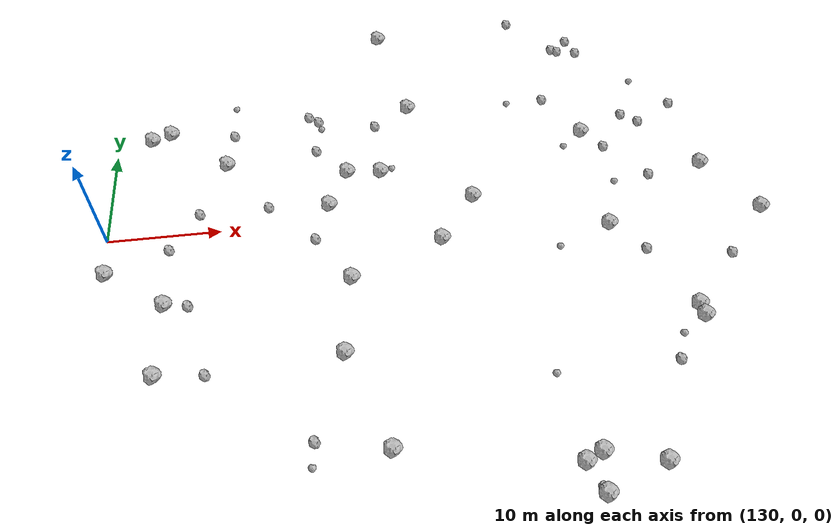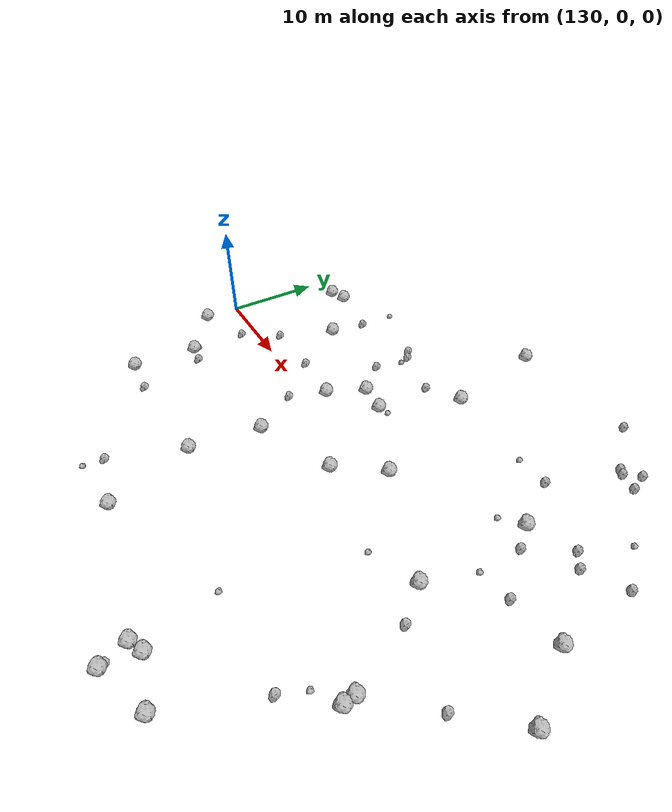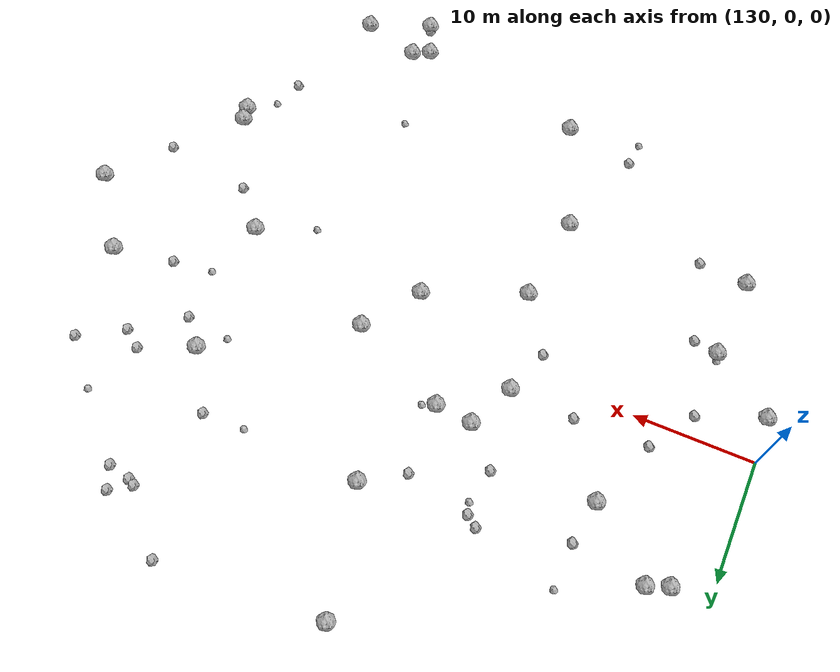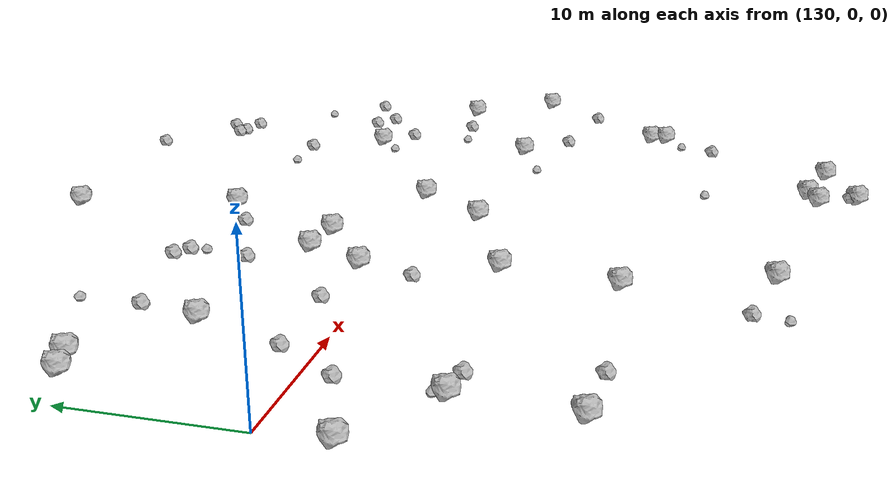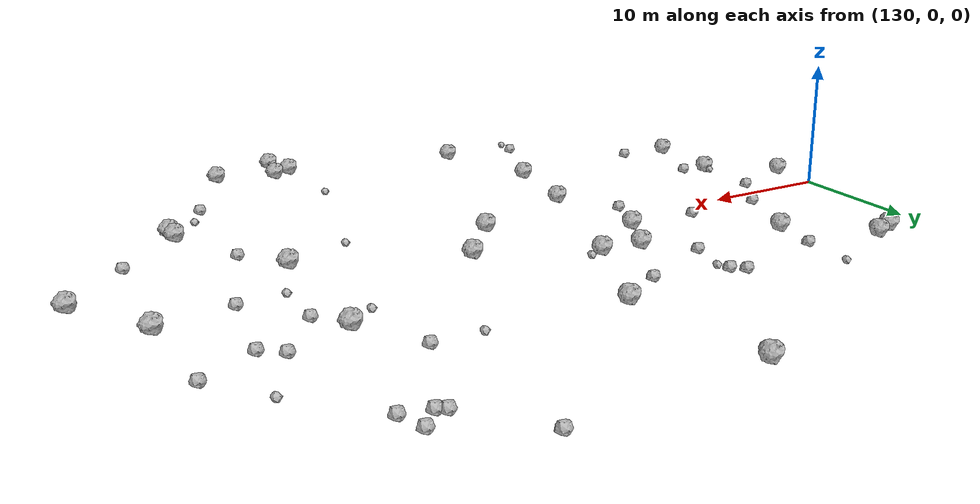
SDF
<sdf version="1.6">
 <world name="default">
  <include><uri>model://sun</uri></include>
  <model name="rock1_4_1">
   <include><uri>model://rock1</uri><pose>154.71235527702987 5.257785383379215 0.5 0 0 0</pose></include>
  </model>
  <model name="rock1_4_2">
   <include><uri>model://rock1</uri><pose>135.4824991166039 -7.487201991059575 0.5 0 0 0</pose></include>
  </model>
  <model name="rock1_4_3">
   <include><uri>model://rock1</uri><pose>159.53347550423555 -3.1610210936557195 0.5 0 0 0</pose></include>
  </model>
  <model name="rock1_4_4">
   <include><uri>model://rock1</uri><pose>180.19764486960696 -12.411742207772868 0.5 0 0 0</pose></include>
  </model>
  <model name="rock1_4_5">
   <include><uri>model://rock1</uri><pose>162.89547836956783 1.342999088866577 0.5 0 0 0</pose></include>
  </model>
  <model name="rock1_4_6">
   <include><uri>model://rock1</uri><pose>151.3254161176689 -6.478339342189379 0.5 0 0 0</pose></include>
  </model>
  <model name="rock1_4_7">
   <include><uri>model://rock1</uri><pose>174.61411431394788 -3.1954084723425993 0.5 0 0 0</pose></include>
  </model>
  <model name="rock1_4_8">
   <include><uri>model://rock1</uri><pose>168.79613424233827 -27.625208925473565 0.5 0 0 0</pose></include>
  </model>
  <model name="rock1_4_9">
   <include><uri>model://rock1</uri><pose>173.88486183359794 -25.680245085483524 0.5 0 0 0</pose></include>
  </model>
  <model name="rock1_4_10">
   <include><uri>model://rock1</uri><pose>153.4849264330453 -22.45382031934568 0.5 0 0 0</pose></include>
  </model>
  <model name="rock1_4_11">
   <include><uri>model://rock1</uri><pose>151.5972548344546 5.569223457575546 0.5 0 0 0</pose></include>
  </model>
  <model name="rock1_4_12">
   <include><uri>model://rock1</uri><pose>150.36980655857374 -13.750875914131544 0.5 0 0 0</pose></include>
  </model>
  <model name="rock1_4_13">
   <include><uri>model://rock1</uri><pose>188.72876641769426 -2.8182301819883584 0.5 0 0 0</pose></include>
  </model>
  <model name="rock1_4_14">
   <include><uri>model://rock1</uri><pose>134.98997783550334 12.26487358177367 0.5 0 0 0</pose></include>
  </model>
  <model name="rock1_4_15">
   <include><uri>model://rock1</uri><pose>135.07660463427436 -14.214586296145047 0.5 0 0 0</pose></include>
  </model>
  <model name="rock1_4_16">
   <include><uri>model://rock1</uri><pose>133.22397477715904 11.61149558739222 0.5 0 0 0</pose></include>
  </model>
  <model name="rock1_4_17">
   <include><uri>model://rock1</uri><pose>180.36497572545227 -13.527677459275765 0.5 0 0 0</pose></include>
  </model>
  <model name="rock1_4_18">
   <include><uri>model://rock1</uri><pose>184.74948667427617 2.9995763115874112 0.5 0 0 0</pose></include>
  </model>
  <model name="rock1_4_19">
   <include><uri>model://rock1</uri><pose>140.4274836109926 7.700604007603232 0.5 0 0 0</pose></include>
  </model>
  <model name="rock1_4_20">
   <include><uri>model://rock1</uri><pose>167.75680670849496 -25.038943223133426 0.5 0 0 0</pose></include>
  </model>
  <model name="rock1_4_21">
   <include><uri>model://rock1</uri><pose>157.98291007187316 13.299921401634009 0.5 0 0 0</pose></include>
  </model>
  <model name="rock1_4_22">
   <include><uri>model://rock1</uri><pose>169.19618054495595 -24.37162266373691 0.5 0 0 0</pose></include>
  </model>
  <model name="rock1_4_23">
   <include><uri>model://rock1</uri><pose>155.8302829323874 23.834889427818254 0.5 0 0 0</pose></include>
  </model>
  <model name="rock1_4_24">
   <include><uri>model://rock1</uri><pose>174.40699588457716 8.204832279032985 0.5 0 0 0</pose></include>
  </model>
  <model name="rock1_4_25">
   <include><uri>model://rock1</uri><pose>130.2423901879628 -3.788121346415071 0.5 0 0 0</pose></include>
  </model>
  <model name="rock1_4_26">
   <include><uri>model://rock1</uri><pose>149.7504363545355 1.77482570593968 0.5 0 0 0</pose></include>
  </model>
  <model name="rock2_4_0">
   <include><uri>model://rock2</uri><pose>168.58285869470154 -27.168679964296054 0.3 0 0 0</pose></include>
  </model>
  <model name="rock2_4_1">
   <include><uri>model://rock2</uri><pose>148.2249085762629 13.120031791729772 0.3 0 0 0</pose></include>
  </model>
  <model name="rock2_4_2">
   <include><uri>model://rock2</uri><pose>175.4722049743011 21.350003974094555 0.3 0 0 0</pose></include>
  </model>
  <model name="rock2_4_3">
   <include><uri>model://rock2</uri><pose>177.210721009699 -6.232068500673286 0.3 0 0 0</pose></include>
  </model>
  <model name="rock2_4_4">
   <include><uri>model://rock2</uri><pose>138.07340522165342 1.9998254898332561 0.3 0 0 0</pose></include>
  </model>
  <model name="rock2_4_5">
   <include><uri>model://rock2</uri><pose>154.5560361641682 11.21722194596073 0.3 0 0 0</pose></include>
  </model>
  <model name="rock2_4_6">
   <include><uri>model://rock2</uri><pose>184.55266100336385 -7.492101935068934 0.3 0 0 0</pose></include>
  </model>
  <model name="rock2_4_7">
   <include><uri>model://rock2</uri><pose>148.34917506314247 -1.9377169858983798 0.3 0 0 0</pose></include>
  </model>
  <model name="rock2_4_8">
   <include><uri>model://rock2</uri><pose>135.55120904703088 -1.7365327248137454 0.3 0 0 0</pose></include>
  </model>
  <model name="rock2_4_9">
   <include><uri>model://rock2</uri><pose>137.46271816108916 -7.7838104686527245 0.3 0 0 0</pose></include>
  </model>
  <model name="rock2_4_10">
   <include><uri>model://rock2</uri><pose>149.1312989705693 12.425987645315438 0.3 0 0 0</pose></include>
  </model>
  <model name="rock2_4_11">
   <include><uri>model://rock2</uri><pose>183.91714949440515 11.129227786041632 0.3 0 0 0</pose></include>
  </model>
  <model name="rock2_4_12">
   <include><uri>model://rock2</uri><pose>179.55897396869543 2.1998429990985002 0.3 0 0 0</pose></include>
  </model>
  <model name="rock2_4_13">
   <include><uri>model://rock2</uri><pose>176.13386393210828 6.137562789297185 0.3 0 0 0</pose></include>
  </model>
  <model name="rock2_4_14">
   <include><uri>model://rock2</uri><pose>171.41511936543378 13.012668860055292 0.3 0 0 0</pose></include>
  </model>
  <model name="rock2_4_15">
   <include><uri>model://rock2</uri><pose>148.78778938719577 8.571533829517328 0.3 0 0 0</pose></include>
  </model>
  <model name="rock2_4_16">
   <include><uri>model://rock2</uri><pose>139.1364918083348 -14.523014896328217 0.3 0 0 0</pose></include>
  </model>
  <model name="rock2_4_17">
   <include><uri>model://rock2</uri><pose>178.78618906722414 10.130763183890402 0.3 0 0 0</pose></include>
  </model>
  <model name="rock2_4_18">
   <include><uri>model://rock2</uri><pose>147.6148205866781 -21.196990393361865 0.3 0 0 0</pose></include>
  </model>
  <model name="rock2_4_19">
   <include><uri>model://rock2</uri><pose>180.24234049653964 9.014014232085572 0.3 0 0 0</pose></include>
  </model>
  <model name="rock2_4_20">
   <include><uri>model://rock2</uri><pose>177.1753066177704 -17.336021930963287 0.3 0 0 0</pose></include>
  </model>
  <model name="rock2_4_21">
   <include><uri>model://rock2</uri><pose>174.32410770341914 19.930803663537525 0.3 0 0 0</pose></include>
  </model>
  <model name="rock2_4_22">
   <include><uri>model://rock2</uri><pose>169.74648396152628 24.781842427517923 0.3 0 0 0</pose></include>
  </model>
  <model name="rock2_4_23">
   <include><uri>model://rock2</uri><pose>176.19099428303076 19.51590447059202 0.3 0 0 0</pose></include>
  </model>
  <model name="rock2_4_24">
   <include><uri>model://rock2</uri><pose>141.0271715358098 11.390708895681264 0.3 0 0 0</pose></include>
  </model>
  <model name="rock2_4_25">
   <include><uri>model://rock2</uri><pose>144.26327676014404 2.1312051703421275 0.3 0 0 0</pose></include>
  </model>
  <model name="rock2_4_26">
   <include><uri>model://rock2</uri><pose>173.74958566245272 20.253593646258558 0.3 0 0 0</pose></include>
  </model>
  <model name="rock3_4_0">
   <include><uri>model://rock3</uri><pose>149.37838191065316 11.43240982141063 0.2 0 0 0</pose></include>
  </model>
  <model name="rock3_4_1">
   <include><uri>model://rock3</uri><pose>180.77904588072198 14.658658464105457 0.2 0 0 0</pose></include>
  </model>
  <model name="rock3_4_2">
   <include><uri>model://rock3</uri><pose>176.1952099901846 1.718103462918883 0.2 0 0 0</pose></include>
  </model>
  <model name="rock3_4_3">
   <include><uri>model://rock3</uri><pose>135.29689110313282 -6.871867724089199 0.2 0 0 0</pose></include>
  </model>
  <model name="rock3_4_4">
   <include><uri>model://rock3</uri><pose>141.11318549342036 15.135985750204036 0.2 0 0 0</pose></include>
  </model>
  <model name="rock3_4_5">
   <include><uri>model://rock3</uri><pose>147.3744256170044 -23.235840035540154 0.2 0 0 0</pose></include>
  </model>
  <model name="rock3_4_6">
   <include><uri>model://rock3</uri><pose>166.96755089273339 -17.482247443499578 0.2 0 0 0</pose></include>
  </model>
  <model name="rock3_4_7">
   <include><uri>model://rock3</uri><pose>178.10904884770474 -14.9994289506584 0.2 0 0 0</pose></include>
  </model>
  <model name="rock3_4_8">
   <include><uri>model://rock3</uri><pose>155.74028925851144 5.640686184675047 0.2 0 0 0</pose></include>
  </model>
  <model name="rock3_4_9">
   <include><uri>model://rock3</uri><pose>172.3874543887893 6.597265486297985 0.2 0 0 0</pose></include>
  </model>
  <model name="rock3_4_10">
   <include><uri>model://rock3</uri><pose>169.7528060080441 -5.13563518558006 0.2 0 0 0</pose></include>
  </model>
  <model name="rock3_4_11">
   <include><uri>model://rock3</uri><pose>167.8465454584592 12.894029514920206 0.2 0 0 0</pose></include>
  </model>
 </world>
</sdf>
